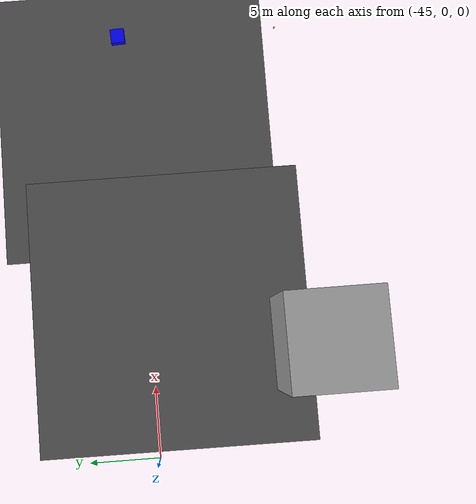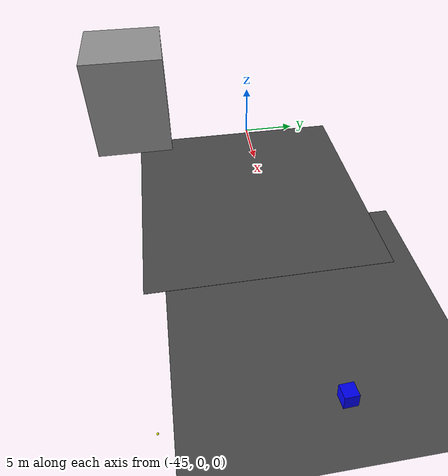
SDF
<sdf version="1.6">
 <world name="default">
  <model name="labrob_ground_3">
   <static>1</static>
   <link name="link">
    <collision name="collision">
     <geometry><plane><normal>0 0 1</normal><size>20 20</size></plane></geometry>
     <surface><friction><ode><mu>100</mu><mu2>50</mu2></ode></friction></surface>
    </collision>
    <visual name="visual">
     <cast_shadows>0</cast_shadows>
     <geometry><plane><normal>0 0 1</normal><size>20 20</size></plane></geometry>
     <material>
      <script>
       <uri>model://labrob_ground/materials/scripts/</uri>
       <uri>model://labrob_ground/materials/textures/</uri>
       <name>Labrob/AsphaltGround</name>
      </script>
     </material>
    </visual>
   </link>
   <pose>-20.4019 0.227461 0 0 -0 0</pose>
  </model>
  <model name="labrob_ground_16">
   <static>1</static>
   <link name="link">
    <collision name="collision">
     <geometry><plane><normal>0 0 1</normal><size>20 20</size></plane></geometry>
     <surface><friction><ode><mu>100</mu><mu2>50</mu2></ode></friction></surface>
    </collision>
    <visual name="visual">
     <cast_shadows>0</cast_shadows>
     <geometry><plane><normal>0 0 1</normal><size>20 20</size></plane></geometry>
     <material>
      <script>
       <uri>model://labrob_ground/materials/scripts/</uri>
       <uri>model://labrob_ground/materials/textures/</uri>
       <name>Labrob/AsphaltGround</name>
      </script>
     </material>
    </visual>
   </link>
   <pose>-34.5552 -1.44397 0 0 -0 0</pose>
  </model>
  <model name="Untitled_0">
   <link name="link_2">
    <inertial>
     <mass>1</mass>
     <inertia>
      <ixx>0.166667</ixx>
      <ixy>0</ixy>
      <ixz>0</ixz>
      <iyy>0.166667</iyy>
      <iyz>0</iyz>
      <izz>0.166667</izz>
     </inertia>
    </inertial>
    <pose>1e-06 -0 0 0 -0 0</pose>
    <visual name="visual">
     <geometry><box><size>6 6 8</size></box></geometry>
     <material>
      <lighting>1</lighting>
      <script><uri>file://media/materials/scripts/gazebo.material</uri><name>Gazebo/Grey</name></script>
      <shader type="pixel"><normal_map>__default__</normal_map></shader>
      <ambient>0.3 0.3 0.3 1</ambient>
      <diffuse>0.7 0.7 0.7 1</diffuse>
      <specular>0.01 0.01 0.01 1</specular>
      <emissive>0 0 0 1</emissive>
     </material>
    </visual>
    <collision name="collision">
     <geometry><box><size>1 1 1</size></box></geometry>
     <surface>
      <friction>
       <ode><mu>1</mu><mu2>1</mu2><fdir1>0 0 0</fdir1><slip1>0</slip1><slip2>0</slip2></ode>
       <torsional>
        <coefficient>1</coefficient>
        <patch_radius>0</patch_radius>
        <surface_radius>0</surface_radius>
        <use_patch_radius>1</use_patch_radius>
        <ode><slip>0</slip></ode>
       </torsional>
      </friction>
      <bounce><restitution_coefficient>0</restitution_coefficient><threshold>1e+06</threshold></bounce>
      <contact>
       <collide_without_contact>0</collide_without_contact>
       <collide_without_contact_bitmask>1</collide_without_contact_bitmask>
       <collide_bitmask>1</collide_bitmask>
       <ode>
        <soft_cfm>0</soft_cfm>
        <soft_erp>0.2</soft_erp>
        <kp>1e+13</kp>
        <kd>1</kd>
        <max_vel>0.01</max_vel>
        <min_depth>0</min_depth>
       </ode>
       <bullet>
        <split_impulse>1</split_impulse>
        <split_impulse_penetration_threshold>-0.01</split_impulse_penetration_threshold>
        <soft_cfm>0</soft_cfm>
        <soft_erp>0.2</soft_erp>
        <kp>1e+13</kp>
        <kd>1</kd>
       </bullet>
      </contact>
     </surface>
    </collision>
   </link>
   <static>0</static>
   <pose>-37.4644 -11.1231 9.95794 0 2.1e-05 0.002719</pose>
  </model>
  <model name="sphere_green_14">
   <link name="chassis">
    <pose>0 0 0.25 0 -0 0</pose>
    <inertial>
     <mass>1</mass>
     <inertia><ixx>1</ixx><ixy>0</ixy><ixz>0</ixz><iyy>1</iyy><iyz>0</iyz><izz>1</izz></inertia>
    </inertial>
    <visual name="visual">
     <geometry><sphere><radius>0.07</radius></sphere></geometry>
     <material>
      <ambient>1 1 0 1</ambient>
      <diffuse>1 1 0 1</diffuse>
      <specular>0.1 0.1 0.1 1</specular>
      <emissive>1 1 0 1</emissive>
      <shader type="pixel"><normal_map>__default__</normal_map></shader>
      <script><name>ModelPreview_1::chassis::visual_MATERIAL_</name><uri>__default__</uri></script>
     </material>
    </visual>
    <collision name="collision">
     <geometry><sphere><radius>0.07</radius></sphere></geometry>
     <surface>
      <friction>
       <ode><mu>1</mu><mu2>1</mu2><fdir1>0 0 0</fdir1><slip1>0</slip1><slip2>0</slip2></ode>
       <torsional>
        <coefficient>1</coefficient>
        <patch_radius>0</patch_radius>
        <surface_radius>0</surface_radius>
        <use_patch_radius>1</use_patch_radius>
        <ode><slip>0</slip></ode>
       </torsional>
      </friction>
      <bounce><restitution_coefficient>0</restitution_coefficient><threshold>1e+06</threshold></bounce>
      <contact>
       <collide_without_contact>0</collide_without_contact>
       <collide_without_contact_bitmask>1</collide_without_contact_bitmask>
       <collide_bitmask>1</collide_bitmask>
       <ode>
        <soft_cfm>0</soft_cfm>
        <soft_erp>0.2</soft_erp>
        <kp>1e+13</kp>
        <kd>1</kd>
        <max_vel>0.01</max_vel>
        <min_depth>0</min_depth>
       </ode>
       <bullet>
        <split_impulse>1</split_impulse>
        <split_impulse_penetration_threshold>-0.01</split_impulse_penetration_threshold>
        <soft_cfm>0</soft_cfm>
        <soft_erp>0.2</soft_erp>
        <kp>1e+13</kp>
        <kd>1</kd>
       </bullet>
      </contact>
     </surface>
    </collision>
   </link>
   <static>1</static>
   <pose>-14.0193 -10.7056 0 0 -0 0</pose>
  </model>
  <model name="unit_box_blue">
   <link name="link">
    <inertial>
     <mass>1</mass>
     <inertia>
      <ixx>0.166667</ixx>
      <ixy>0</ixy>
      <ixz>0</ixz>
      <iyy>0.166667</iyy>
      <iyz>0</iyz>
      <izz>0.166667</izz>
     </inertia>
    </inertial>
    <visual name="visual">
     <geometry><box><size>1 1 1</size></box></geometry>
     <material>
      <script><name>Gazebo/Grey</name><uri>file://media/materials/scripts/gazebo.material</uri></script>
      <shader type="pixel"><normal_map>__default__</normal_map></shader>
      <ambient>0 0 1 1</ambient>
      <diffuse>0.7 0.7 0.7 1</diffuse>
      <specular>0.01 0.01 0.01 1</specular>
      <emissive>0 0 0.7 1</emissive>
     </material>
    </visual>
    <collision name="collision">
     <geometry><box><size>1 1 1</size></box></geometry>
     <surface>
      <friction>
       <ode><mu>1</mu><mu2>1</mu2><fdir1>0 0 0</fdir1><slip1>0</slip1><slip2>0</slip2></ode>
       <torsional>
        <coefficient>1</coefficient>
        <patch_radius>0</patch_radius>
        <surface_radius>0</surface_radius>
        <use_patch_radius>1</use_patch_radius>
        <ode><slip>0</slip></ode>
       </torsional>
      </friction>
      <bounce><restitution_coefficient>0</restitution_coefficient><threshold>1e+06</threshold></bounce>
      <contact>
       <collide_without_contact>0</collide_without_contact>
       <collide_without_contact_bitmask>1</collide_without_contact_bitmask>
       <collide_bitmask>1</collide_bitmask>
       <ode>
        <soft_cfm>0</soft_cfm>
        <soft_erp>0.2</soft_erp>
        <kp>1e+13</kp>
        <kd>1</kd>
        <max_vel>0.01</max_vel>
        <min_depth>0</min_depth>
       </ode>
       <bullet>
        <split_impulse>1</split_impulse>
        <split_impulse_penetration_threshold>-0.01</split_impulse_penetration_threshold>
        <soft_cfm>0</soft_cfm>
        <soft_erp>0.2</soft_erp>
        <kp>1e+13</kp>
        <kd>1</kd>
       </bullet>
      </contact>
     </surface>
    </collision>
   </link>
   <static>0</static>
   <pose>-14.148 1.01494 0.975642 -0.008609 -0.16403 0.049601</pose>
  </model>
 </world>
</sdf>
